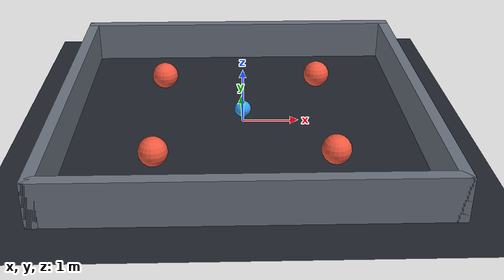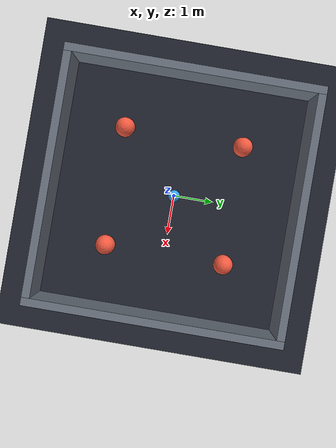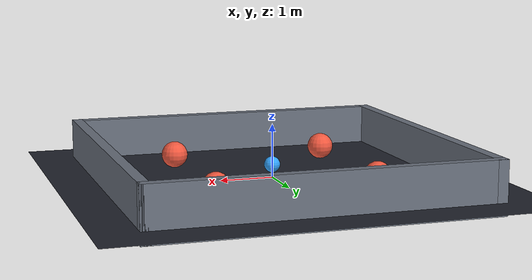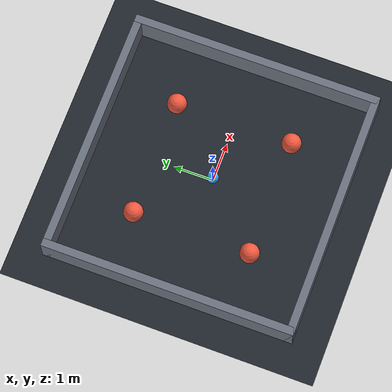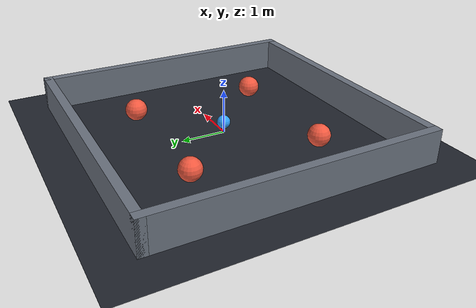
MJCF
<?xml version="1.0" encoding="utf-8"?>
<mujoco model="praxis_cover">
  <compiler angle="radian" coordinate="local"/>

  <option timestep="0.01" iterations="6" ls_iterations="8" integrator="Euler">
    <flag eulerdamp="disable"/>
  </option>

  <default>
    <geom solref="0.008 1" solimp="0.95 0.99 0.001" condim="3"/>
  </default>

  <asset>
    <texture name="grid" type="2d" builtin="checker" rgb1="0.16 0.18 0.22"
             rgb2="0.10 0.11 0.14" width="300" height="300"/>
    <material name="grid_mat" texture="grid" texrepeat="8 8" reflectance="0.05"/>
    <material name="agent_mat" rgba="0.20 0.65 1.00 1"/>
    <material name="obstacle_mat" rgba="0.95 0.35 0.25 1"/>
    <material name="wall_mat" rgba="0.42 0.45 0.50 1"/>
  </asset>

  <worldbody>
    <light name="overhead" pos="0 0 7" dir="0 0 -1" diffuse="0.85 0.85 0.85"
           specular="0.1 0.1 0.1" castshadow="false"/>

    <!-- Fixed top-down camera (shows the whole arena so coverage is visible). -->
    <camera name="topdown" pos="0 0 9.0" xyaxes="1 0 0 0 1 0"/>

    <!-- Floor (visual only for the agent: contype=1/conaffinity=1, agent floats). -->
    <geom name="floor" type="plane" size="4 4 0.1" pos="0 0 0"
          material="grid_mat" contype="1" conaffinity="1"/>

    <!-- Perimeter walls. Inner faces at +/-3.0 = ARENA_HALF. contype/conaffinity=2
         so the agent collides with them (bounces). -->
    <geom name="wall_px" type="box" size="0.1 3.2 0.5" pos="3.1 0 0.25"
          material="wall_mat" contype="2" conaffinity="2"/>
    <geom name="wall_nx" type="box" size="0.1 3.2 0.5" pos="-3.1 0 0.25"
          material="wall_mat" contype="2" conaffinity="2"/>
    <geom name="wall_py" type="box" size="3.2 0.1 0.5" pos="0 3.1 0.25"
          material="wall_mat" contype="2" conaffinity="2"/>
    <geom name="wall_ny" type="box" size="3.2 0.1 0.5" pos="0 -3.1 0.25"
          material="wall_mat" contype="2" conaffinity="2"/>

    <!-- ================= AGENT (2-DOF, floating, REAL collisions) ============= -->
    <body name="agent" pos="0 0 0.25">
      <joint name="agent_x" type="slide" axis="1 0 0" damping="0.8"/>
      <joint name="agent_y" type="slide" axis="0 1 0" damping="0.8"/>
      <geom name="agent_geom" type="sphere" size="0.15" material="agent_mat"
            mass="1.0" contype="2" conaffinity="2"/>
      <camera name="track" mode="trackcom" pos="0 -5.5 5.0" xyaxes="1 0 0 0 0.7 0.7"/>
    </body>

    <!-- ================= OBSTACLES (mocap movers 0..3, REAL collisions) ======= -->
    <body name="obstacle_0" mocap="true" pos="-1.5 1.5 0.25">
      <geom name="obstacle_0_geom" type="sphere" size="0.25"
            material="obstacle_mat" contype="2" conaffinity="2"/>
    </body>
    <body name="obstacle_1" mocap="true" pos="1.5 1.5 0.25">
      <geom name="obstacle_1_geom" type="sphere" size="0.25"
            material="obstacle_mat" contype="2" conaffinity="2"/>
    </body>
    <body name="obstacle_2" mocap="true" pos="1.5 -1.5 0.25">
      <geom name="obstacle_2_geom" type="sphere" size="0.25"
            material="obstacle_mat" contype="2" conaffinity="2"/>
    </body>
    <body name="obstacle_3" mocap="true" pos="-1.5 -1.5 0.25">
      <geom name="obstacle_3_geom" type="sphere" size="0.25"
            material="obstacle_mat" contype="2" conaffinity="2"/>
    </body>
  </worldbody>

  <!-- Velocity actuators on the two agent slides. ctrl = target velocity (m/s). -->
  <actuator>
    <velocity name="vel_x" joint="agent_x" kv="10.0" ctrlrange="-2.0 2.0"/>
    <velocity name="vel_y" joint="agent_y" kv="10.0" ctrlrange="-2.0 2.0"/>
  </actuator>
</mujoco>
